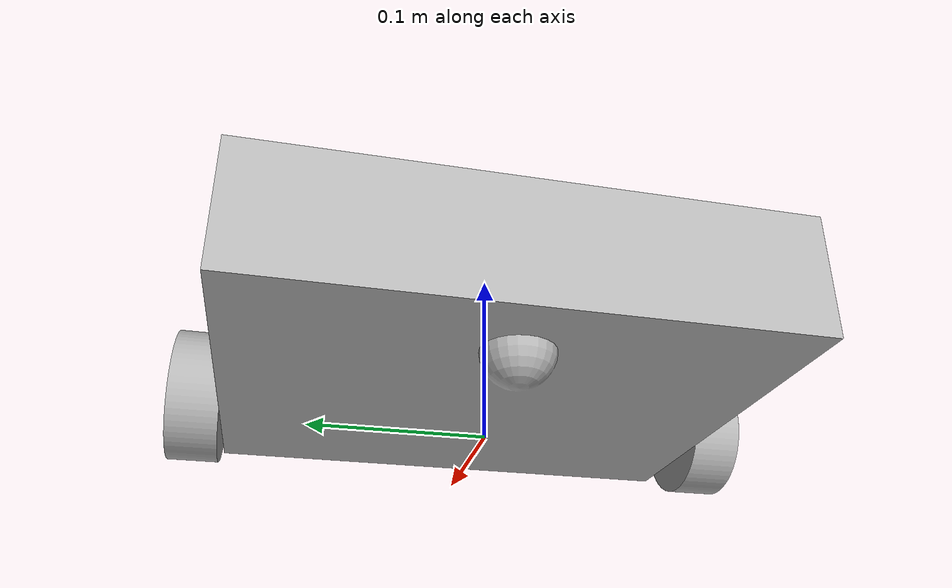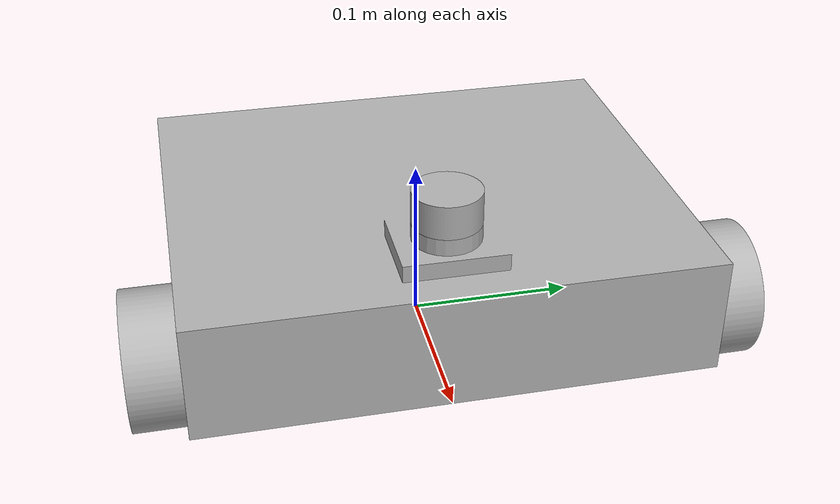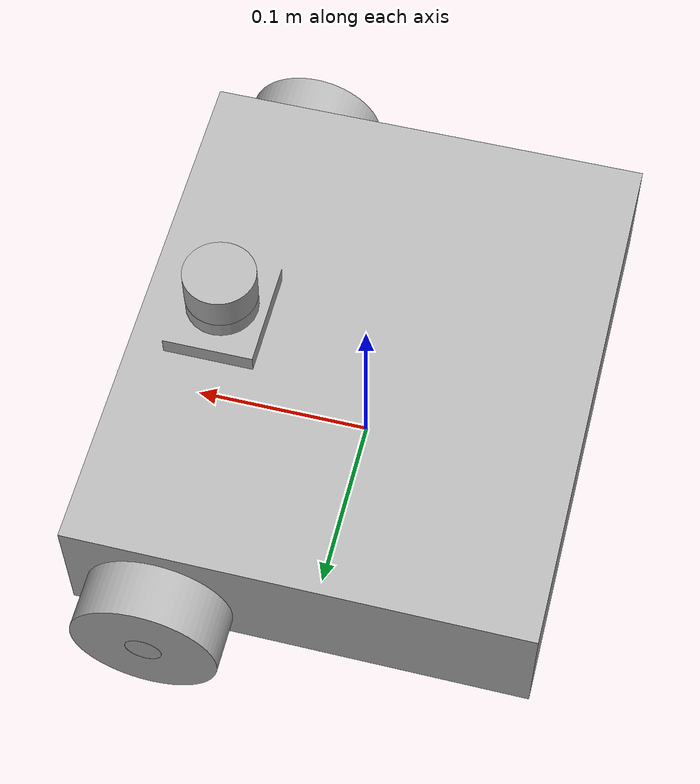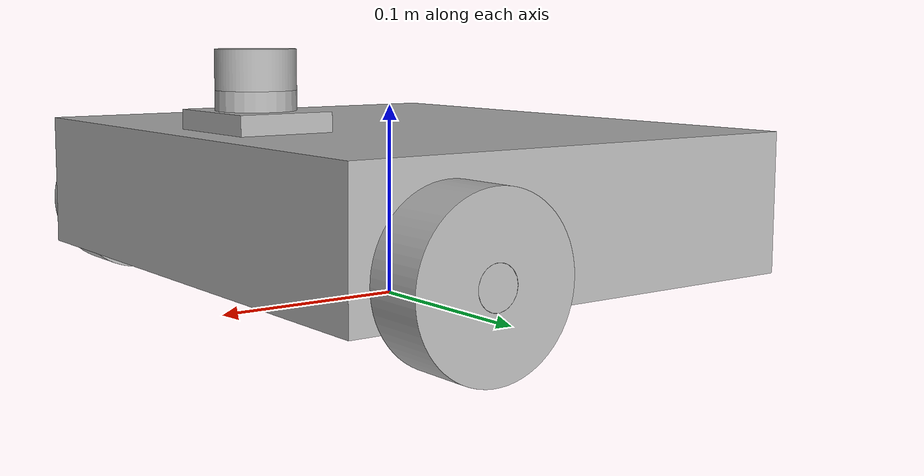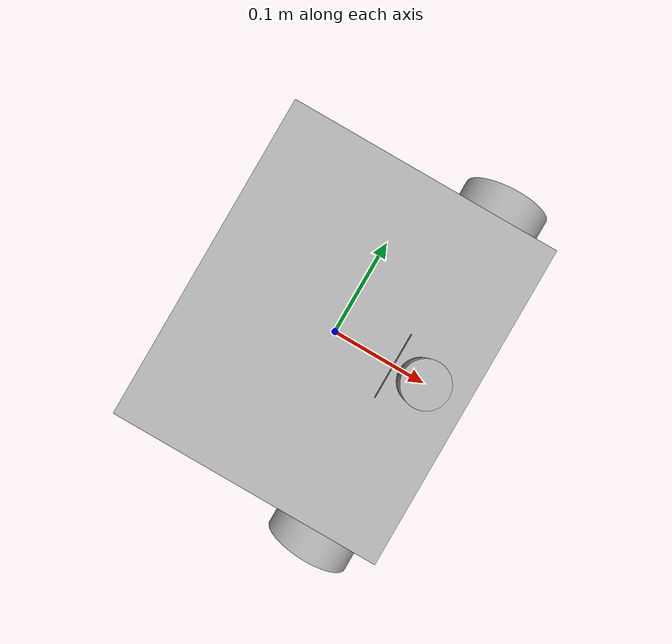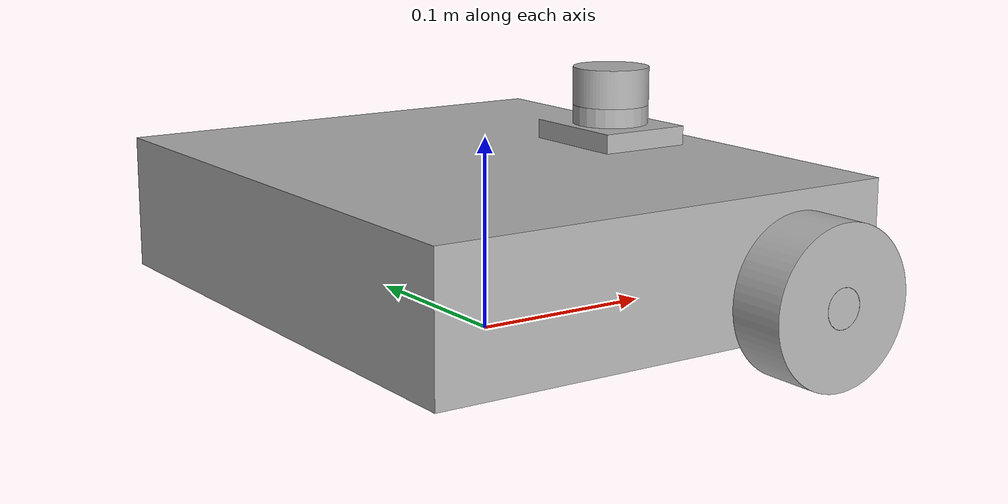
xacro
<?xml version="1.0" ?>
<robot name="tu" xmlns:xacro="http://www.ros.org/wiki/xacro">

<xacro:include filename="$(find tu_description)/urdf/materials.xacro" />
<xacro:include filename="$(find tu_description)/urdf/tu.trans" />
<xacro:include filename="$(find tu_description)/urdf/tu.gazebo" />
<link name="base_link">
  <inertial>
    <origin xyz="0.0006685951377077788 2.7311276214275178e-17 0.05515642907170514" rpy="0 0 0"/>
    <mass value="41.82614303573709"/>
    <inertia ixx="0.330956" iyy="0.236145" izz="0.531638" ixy="-0.0" iyz="-0.0" ixz="-0.001397"/>
  </inertial>
  <visual>
    <origin xyz="0 0 0" rpy="0 0 0"/>
    <geometry>
      <mesh filename="package://tu_description/meshes/base_link.stl" scale="0.001 0.001 0.001"/>
    </geometry>
    <material name="silver"/>
  </visual>
  <collision>
    <origin xyz="0 0 0" rpy="0 0 0"/>
    <geometry>
      <mesh filename="package://tu_description/meshes/base_link.stl" scale="0.001 0.001 0.001"/>
    </geometry>
  </collision>
</link>

<link name="right_1">
  <inertial>
    <origin xyz="-6.974976152207546e-14 -0.015000000000000013 0.0" rpy="0 0 0"/>
    <mass value="1.1097676048805907"/>
    <inertia ixx="0.000555" iyy="0.000943" izz="0.000555" ixy="0.0" iyz="-0.0" ixz="-0.0"/>
  </inertial>
  <visual>
    <origin xyz="-0.075 0.15 -0.04" rpy="0 0 0"/>
    <geometry>
      <mesh filename="package://tu_description/meshes/right_1.stl" scale="0.001 0.001 0.001"/>
    </geometry>
    <material name="silver"/>
  </visual>
  <collision>
    <origin xyz="-0.075 0.15 -0.04" rpy="0 0 0"/>
    <geometry>
      <mesh filename="package://tu_description/meshes/right_1.stl" scale="0.001 0.001 0.001"/>
    </geometry>
  </collision>
</link>

<link name="left_1">
  <inertial>
    <origin xyz="6.968037258303639e-14 0.015000000000000013 0.0" rpy="0 0 0"/>
    <mass value="1.109767604880591"/>
    <inertia ixx="0.000555" iyy="0.000943" izz="0.000555" ixy="0.0" iyz="0.0" ixz="-0.0"/>
  </inertial>
  <visual>
    <origin xyz="-0.075 -0.15 -0.04" rpy="0 0 0"/>
    <geometry>
      <mesh filename="package://tu_description/meshes/left_1.stl" scale="0.001 0.001 0.001"/>
    </geometry>
    <material name="silver"/>
  </visual>
  <collision>
    <origin xyz="-0.075 -0.15 -0.04" rpy="0 0 0"/>
    <geometry>
      <mesh filename="package://tu_description/meshes/left_1.stl" scale="0.001 0.001 0.001"/>
    </geometry>
  </collision>
</link>

<link name="lidar_1">
  <inertial>
    <origin xyz="0.0 2.2617277734851677e-17 0.009999999999999995" rpy="0 0 0"/>
    <mass value="0.197292018645439"/>
    <inertia ixx="2.6e-05" iyy="2.6e-05" izz="3.9e-05" ixy="-0.0" iyz="-0.0" ixz="-0.0"/>
  </inertial>
  <visual>
    <origin xyz="-0.08 -0.0 -0.11" rpy="0 0 0"/>
    <geometry>
      <mesh filename="package://tu_description/meshes/lidar_1.stl" scale="0.001 0.001 0.001"/>
    </geometry>
    <material name="silver"/>
  </visual>
  <collision>
    <origin xyz="-0.08 -0.0 -0.11" rpy="0 0 0"/>
    <geometry>
      <mesh filename="package://tu_description/meshes/lidar_1.stl" scale="0.001 0.001 0.001"/>
    </geometry>
  </collision>
</link>

<joint name="Revolute 1" type="continuous">
  <origin xyz="0.075 -0.15 0.04" rpy="0 0 0"/>
  <parent link="base_link"/>
  <child link="right_1"/>
  <axis xyz="0.0 1.0 0.0"/>
</joint>

<joint name="Revolute 2" type="continuous">
  <origin xyz="0.075 0.15 0.04" rpy="0 0 0"/>
  <parent link="base_link"/>
  <child link="left_1"/>
  <axis xyz="0.0 -1.0 0.0"/>
</joint>

<joint name="Rigid 3" type="fixed">
  <origin xyz="0.08 0.0 0.11" rpy="0 0 0"/>
  <parent link="base_link"/>
  <child link="lidar_1"/>
</joint>

</robot>

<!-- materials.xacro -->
<robot name="tu" xmlns:xacro="http://www.ros.org/wiki/xacro" >

<material name="silver">
  <color rgba="0.700 0.700 0.700 1.000"/>
</material>

</robot>

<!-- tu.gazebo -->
<robot name="tu" xmlns:xacro="http://www.ros.org/wiki/xacro" >

<xacro:property name="body_color" value="Gazebo/Silver" />

<gazebo>
  <plugin name="control" filename="libgazebo_ros_control.so"/>
</gazebo>
<gazebo reference="base_link">
  <material>${body_color}</material>
  <mu1>0.2</mu1>
  <mu2>0.2</mu2>
  <selfCollide>true</selfCollide>
  <gravity>true</gravity>
</gazebo>

<gazebo reference="right_1">
  <material>${body_color}</material>
  <mu1>0.2</mu1>
  <mu2>0.2</mu2>
  <selfCollide>true</selfCollide>
</gazebo>

<gazebo reference="left_1">
  <material>${body_color}</material>
  <mu1>0.2</mu1>
  <mu2>0.2</mu2>
  <selfCollide>true</selfCollide>
</gazebo>

<gazebo reference="lidar_1">
  <material>${body_color}</material>
  <mu1>0.2</mu1>
  <mu2>0.2</mu2>
  <selfCollide>true</selfCollide>
</gazebo>

</robot>
